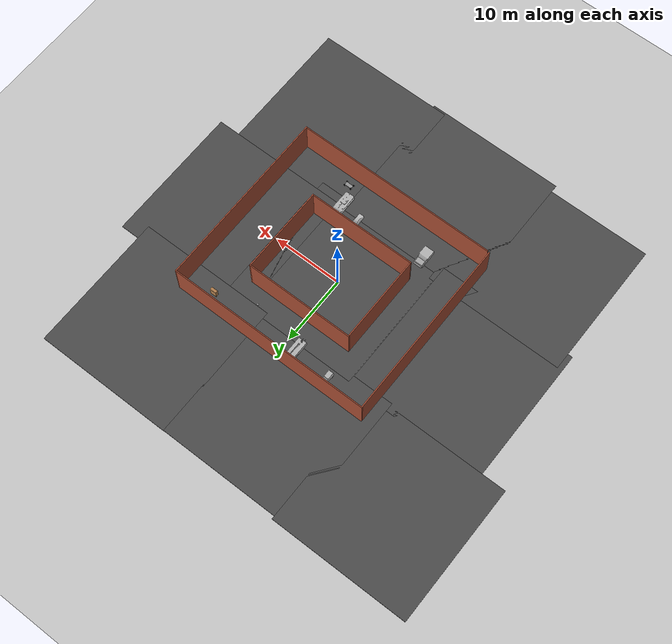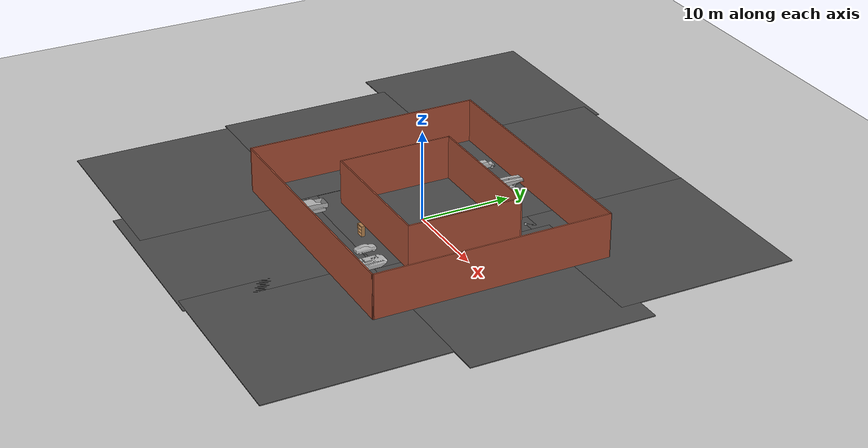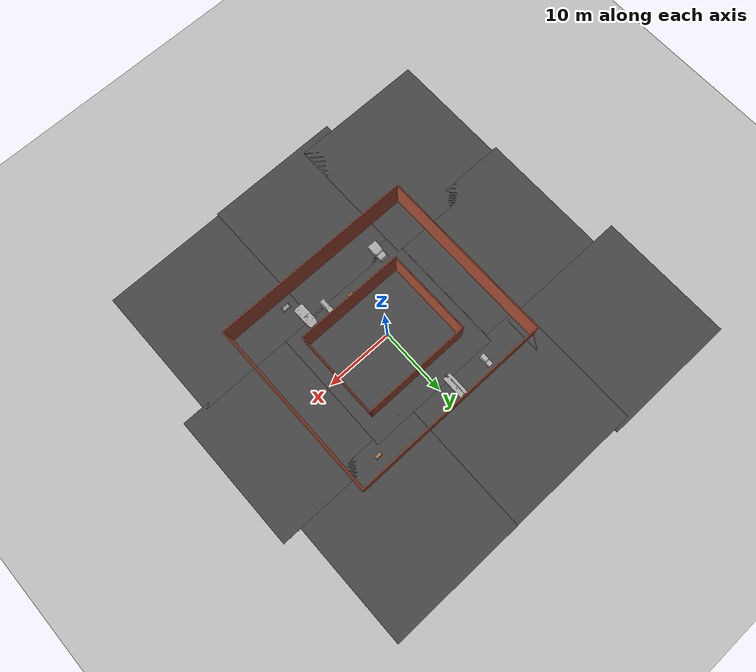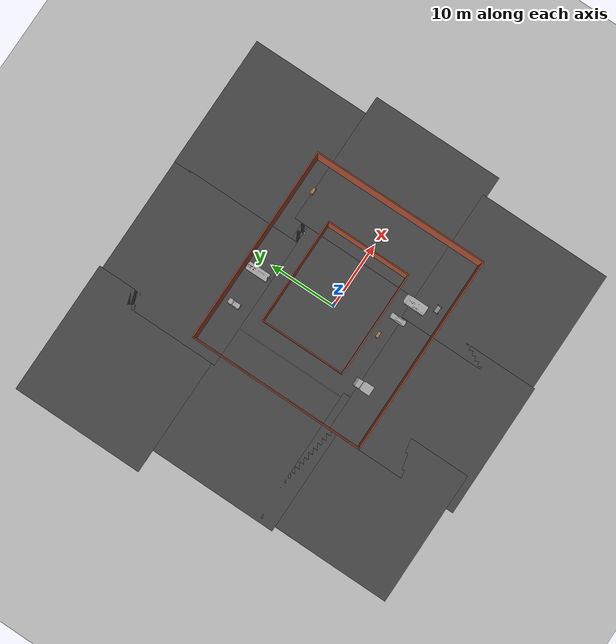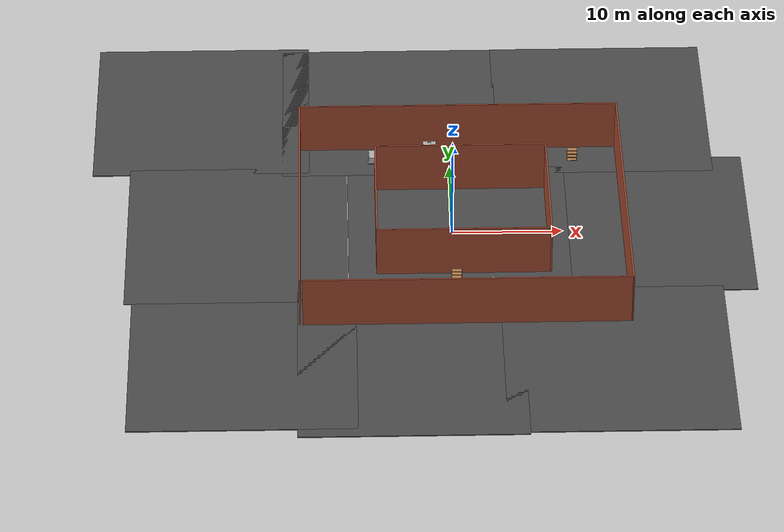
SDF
<sdf version="1.6">
 <world name="default">
  <light name="sun" type="directional">
   <pose>0 0 10 0 -0 0</pose>
   <diffuse>0.8 0.8 0.8 1</diffuse>
   <specular>0.2 0.2 0.2 1</specular>
   <attenuation>
    <range>1000</range>
    <constant>0.9</constant>
    <linear>0.01</linear>
    <quadratic>0.001</quadratic>
   </attenuation>
   <direction>-0.5 0.1 -0.9</direction>
  </light>
  <model name="ground_plane">
   <static>1</static>
   <link name="link">
    <collision name="collision">
     <geometry><plane><normal>0 0 1</normal><size>100 100</size></plane></geometry>
     <surface>
      <contact><collide_bitmask>65535</collide_bitmask></contact>
      <friction><ode><mu>100</mu><mu2>50</mu2></ode></friction>
     </surface>
    </collision>
    <visual name="visual">
     <cast_shadows>0</cast_shadows>
     <geometry><plane><normal>0 0 1</normal><size>100 100</size></plane></geometry>
     <material>
      <script><uri>file://media/materials/scripts/gazebo.material</uri><name>Gazebo/Grey</name></script>
     </material>
    </visual>
   </link>
  </model>
  <gravity>0 0 -9.8</gravity>
  <magnetic_field>6e-06 2.3e-05 -4.2e-05</magnetic_field>
  <atmosphere type="adiabatic"/>
  <physics name="default_physics" default="0" type="ode">
   <max_step_size>0.001</max_step_size>
   <real_time_factor>1</real_time_factor>
   <real_time_update_rate>1000</real_time_update_rate>
  </physics>
  <scene><ambient>0.4 0.4 0.4 1</ambient><background>0.7 0.7 0.7 1</background><shadows>1</shadows></scene>
  <audio><device>default</device></audio>
  <spherical_coordinates>
   <surface_model>EARTH_WGS84</surface_model>
   <latitude_deg>0</latitude_deg>
   <longitude_deg>0</longitude_deg>
   <elevation>0</elevation>
   <heading_deg>0</heading_deg>
  </spherical_coordinates>
  <model name="asphalt_plane">
   <static>1</static>
   <link name="link">
    <collision name="collision"><geometry><box><size>20 20 0.1</size></box></geometry></collision>
    <visual name="visual">
     <cast_shadows>0</cast_shadows>
     <geometry><box><size>20 20 0.1</size></box></geometry>
     <material>
      <script>
       <uri>model://asphalt_plane/materials/scripts</uri>
       <uri>model://asphalt_plane/materials/textures</uri>
       <name>vrc/asphalt</name>
      </script>
     </material>
    </visual>
   </link>
   <pose>0.533004 -0.175508 0 0 -0 0</pose>
  </model>
  <model name="wall_sdf">
   <pose>0.86237 -0.1343 0 0 -0 0</pose>
   <link name="Wall_17">
    <collision name="Wall_17_Collision">
     <geometry><box><size>29.25 0.15 5</size></box></geometry>
     <pose>0 0 2.5 0 -0 0</pose>
    </collision>
    <visual name="Wall_17_Visual">
     <pose>0 0 2.5 0 -0 0</pose>
     <geometry><box><size>29.25 0.15 5</size></box></geometry>
     <material>
      <script><uri>file://media/materials/scripts/gazebo.material</uri><name>Gazebo/Bricks</name></script>
      <ambient>1 1 1 1</ambient>
     </material>
     <meta><layer>0</layer></meta>
    </visual>
    <pose>0.1599 -13.0851 0 0 -0 3.4e-05</pose>
   </link>
   <link name="Wall_18">
    <collision name="Wall_18_Collision">
     <geometry><box><size>26.3201 0.15 5</size></box></geometry>
     <pose>0 0 2.5 0 -0 0</pose>
    </collision>
    <visual name="Wall_18_Visual">
     <pose>0 0 2.5 0 -0 0</pose>
     <geometry><box><size>26.3201 0.15 5</size></box></geometry>
     <material>
      <script><uri>file://media/materials/scripts/gazebo.material</uri><name>Gazebo/Bricks</name></script>
      <ambient>1 1 1 1</ambient>
     </material>
     <meta><layer>0</layer></meta>
    </visual>
    <pose>14.6749 0.000401 0 0 -0 1.57347</pose>
   </link>
   <link name="Wall_19">
    <collision name="Wall_19_Collision">
     <geometry><box><size>29.5 0.15 5</size></box></geometry>
     <pose>0 0 2.5 0 -0 0</pose>
    </collision>
    <visual name="Wall_19_Visual">
     <pose>0 0 2.5 0 -0 0</pose>
     <geometry><box><size>29.5 0.15 5</size></box></geometry>
     <material>
      <script><uri>file://media/materials/scripts/gazebo.material</uri><name>Gazebo/Bricks</name></script>
      <ambient>1 1 1 1</ambient>
     </material>
     <meta><layer>0</layer></meta>
    </visual>
    <pose>-0.0351 13.0854 0 0 -0 3.14159</pose>
   </link>
   <link name="Wall_20">
    <collision name="Wall_20_Collision">
     <geometry><box><size>26.25 0.15 5</size></box></geometry>
     <pose>0 0 2.5 0 -0 0</pose>
    </collision>
    <visual name="Wall_20_Visual">
     <pose>0 0 2.5 0 -0 0</pose>
     <geometry><box><size>26.25 0.15 5</size></box></geometry>
     <material>
      <script><uri>file://media/materials/scripts/gazebo.material</uri><name>Gazebo/Bricks</name></script>
      <ambient>1 1 1 1</ambient>
     </material>
     <meta><layer>0</layer></meta>
    </visual>
    <pose>-14.7101 0.035402 0 0 -0 -1.5708</pose>
   </link>
   <link name="Wall_23">
    <collision name="Wall_23_Collision">
     <geometry><box><size>15.75 0.15 5</size></box></geometry>
     <pose>0 0 2.5 0 -0 0</pose>
    </collision>
    <visual name="Wall_23_Visual">
     <pose>0 0 2.5 0 -0 0</pose>
     <geometry><box><size>15.75 0.15 5</size></box></geometry>
     <material>
      <script><uri>file://media/materials/scripts/gazebo.material</uri><name>Gazebo/Bricks</name></script>
      <ambient>1 1 1 1</ambient>
     </material>
     <meta><layer>0</layer></meta>
    </visual>
    <pose>0.0229 -5.8436 0 0 -0 0</pose>
   </link>
   <link name="Wall_24">
    <collision name="Wall_24_Collision">
     <geometry><box><size>12.786 0.15 5</size></box></geometry>
     <pose>0 0 2.5 0 -0 0</pose>
    </collision>
    <visual name="Wall_24_Visual">
     <pose>0 0 2.5 0 -0 0</pose>
     <geometry><box><size>12.786 0.15 5</size></box></geometry>
     <material>
      <script><uri>file://media/materials/scripts/gazebo.material</uri><name>Gazebo/Bricks</name></script>
      <ambient>1 1 1 1</ambient>
     </material>
     <meta><layer>0</layer></meta>
    </visual>
    <pose>7.8229 0.474401 0 0 -0 1.5708</pose>
   </link>
   <link name="Wall_25">
    <collision name="Wall_25_Collision">
     <geometry><box><size>15.75 0.15 5</size></box></geometry>
     <pose>0 0 2.5 0 -0 0</pose>
    </collision>
    <visual name="Wall_25_Visual">
     <pose>0 0 2.5 0 -0 0</pose>
     <geometry><box><size>15.75 0.15 5</size></box></geometry>
     <material>
      <script><uri>file://media/materials/scripts/gazebo.material</uri><name>Gazebo/Bricks</name></script>
      <ambient>1 1 1 1</ambient>
     </material>
     <meta><layer>0</layer></meta>
    </visual>
    <pose>0.0229 6.7924 0 0 -0 3.14159</pose>
   </link>
   <link name="Wall_26">
    <collision name="Wall_26_Collision">
     <geometry><box><size>12.571 0.15 5</size></box></geometry>
     <pose>0 0 2.5 0 -0 0</pose>
    </collision>
    <visual name="Wall_26_Visual">
     <pose>0 0 2.5 0 -0 0</pose>
     <geometry><box><size>12.571 0.15 5</size></box></geometry>
     <material>
      <script><uri>file://media/materials/scripts/gazebo.material</uri><name>Gazebo/Bricks</name></script>
      <ambient>1 1 1 1</ambient>
     </material>
     <meta><layer>0</layer></meta>
    </visual>
    <pose>-7.7771 0.581902 0 0 -0 -1.5708</pose>
   </link>
   <static>1</static>
  </model>
  <model name="asphalt_plane_0">
   <static>1</static>
   <link name="link">
    <collision name="collision"><geometry><box><size>20 20 0.1</size></box></geometry></collision>
    <visual name="visual">
     <cast_shadows>0</cast_shadows>
     <geometry><box><size>20 20 0.1</size></box></geometry>
     <material>
      <script>
       <uri>model://asphalt_plane/materials/scripts</uri>
       <uri>model://asphalt_plane/materials/textures</uri>
       <name>vrc/asphalt</name>
      </script>
     </material>
    </visual>
   </link>
   <pose>-19.542 0.036842 0 0 -0 0</pose>
  </model>
  <model name="asphalt_plane_1">
   <static>1</static>
   <link name="link">
    <collision name="collision"><geometry><box><size>20 20 0.1</size></box></geometry></collision>
    <visual name="visual">
     <cast_shadows>0</cast_shadows>
     <geometry><box><size>20 20 0.1</size></box></geometry>
     <material>
      <script>
       <uri>model://asphalt_plane/materials/scripts</uri>
       <uri>model://asphalt_plane/materials/textures</uri>
       <name>vrc/asphalt</name>
      </script>
     </material>
    </visual>
   </link>
   <pose>-18.8455 -17.6454 0 0 -0 0</pose>
  </model>
  <model name="asphalt_plane_2">
   <static>1</static>
   <link name="link">
    <collision name="collision"><geometry><box><size>20 20 0.1</size></box></geometry></collision>
    <visual name="visual">
     <cast_shadows>0</cast_shadows>
     <geometry><box><size>20 20 0.1</size></box></geometry>
     <material>
      <script>
       <uri>model://asphalt_plane/materials/scripts</uri>
       <uri>model://asphalt_plane/materials/textures</uri>
       <name>vrc/asphalt</name>
      </script>
     </material>
    </visual>
   </link>
   <pose>-4.06392 -18.6881 0 0 -0 0</pose>
  </model>
  <model name="asphalt_plane_3">
   <static>1</static>
   <link name="link">
    <collision name="collision"><geometry><box><size>20 20 0.1</size></box></geometry></collision>
    <visual name="visual">
     <cast_shadows>0</cast_shadows>
     <geometry><box><size>20 20 0.1</size></box></geometry>
     <material>
      <script>
       <uri>model://asphalt_plane/materials/scripts</uri>
       <uri>model://asphalt_plane/materials/textures</uri>
       <name>vrc/asphalt</name>
      </script>
     </material>
    </visual>
   </link>
   <pose>14.0061 -18.4264 0 0 -0 0</pose>
  </model>
  <model name="asphalt_plane_4">
   <static>1</static>
   <link name="link">
    <collision name="collision"><geometry><box><size>20 20 0.1</size></box></geometry></collision>
    <visual name="visual">
     <cast_shadows>0</cast_shadows>
     <geometry><box><size>20 20 0.1</size></box></geometry>
     <material>
      <script>
       <uri>model://asphalt_plane/materials/scripts</uri>
       <uri>model://asphalt_plane/materials/textures</uri>
       <name>vrc/asphalt</name>
      </script>
     </material>
    </visual>
   </link>
   <pose>17.0836 1.00489 0 0 -0 0</pose>
  </model>
  <model name="asphalt_plane_5">
   <static>1</static>
   <link name="link">
    <collision name="collision"><geometry><box><size>20 20 0.1</size></box></geometry></collision>
    <visual name="visual">
     <cast_shadows>0</cast_shadows>
     <geometry><box><size>20 20 0.1</size></box></geometry>
     <material>
      <script>
       <uri>model://asphalt_plane/materials/scripts</uri>
       <uri>model://asphalt_plane/materials/textures</uri>
       <name>vrc/asphalt</name>
      </script>
     </material>
    </visual>
   </link>
   <pose>14.3755 18.9058 0 0 -0 0</pose>
  </model>
  <model name="asphalt_plane_6">
   <static>1</static>
   <link name="link">
    <collision name="collision"><geometry><box><size>20 20 0.1</size></box></geometry></collision>
    <visual name="visual">
     <cast_shadows>0</cast_shadows>
     <geometry><box><size>20 20 0.1</size></box></geometry>
     <material>
      <script>
       <uri>model://asphalt_plane/materials/scripts</uri>
       <uri>model://asphalt_plane/materials/textures</uri>
       <name>vrc/asphalt</name>
      </script>
     </material>
    </visual>
   </link>
   <pose>-5.47798 18.8643 0 0 -0 0</pose>
  </model>
  <model name="asphalt_plane_7">
   <static>1</static>
   <link name="link">
    <collision name="collision"><geometry><box><size>20 20 0.1</size></box></geometry></collision>
    <visual name="visual">
     <cast_shadows>0</cast_shadows>
     <geometry><box><size>20 20 0.1</size></box></geometry>
     <material>
      <script>
       <uri>model://asphalt_plane/materials/scripts</uri>
       <uri>model://asphalt_plane/materials/textures</uri>
       <name>vrc/asphalt</name>
      </script>
     </material>
    </visual>
   </link>
   <pose>-23.0053 19.3151 0 0 -0 0</pose>
  </model>
  <model name="beer">
   <link name="link">
    <pose>0 0 0.115 0 -0 0</pose>
    <inertial>
     <mass>0.39</mass>
     <inertia><ixx>0.00058</ixx><ixy>0</ixy><ixz>0</ixz><iyy>0.00058</iyy><iyz>0</iyz><izz>0.00019</izz></inertia>
    </inertial>
    <collision name="collision">
     <geometry><cylinder><radius>0.055</radius><length>0.23</length></cylinder></geometry>
    </collision>
    <visual name="visual">
     <geometry><cylinder><radius>0.055</radius><length>0.23</length></cylinder></geometry>
     <material>
      <script>
       <uri>model://beer/materials/scripts</uri>
       <uri>model://beer/materials/textures</uri>
       <name>Beer/Diffuse</name>
      </script>
     </material>
    </visual>
   </link>
   <pose>8.91739 12.208 0.049992 6e-06 3.4e-05 -8.6e-05</pose>
  </model>
  <model name="bookshelf">
   <static>1</static>
   <link name="link">
    <inertial><mass>1</mass></inertial>
    <collision name="back">
     <pose>0 0.005 0.6 0 -0 0</pose>
     <geometry><box><size>0.9 0.01 1.2</size></box></geometry>
    </collision>
    <visual name="visual1">
     <pose>0 0.005 0.6 0 -0 0</pose>
     <geometry><box><size>0.9 0.01 1.2</size></box></geometry>
     <material>
      <script><uri>file://media/materials/scripts/gazebo.material</uri><name>Gazebo/Wood</name></script>
     </material>
    </visual>
    <collision name="left_side">
     <pose>0.45 -0.195 0.6 0 -0 0</pose>
     <geometry><box><size>0.02 0.4 1.2</size></box></geometry>
    </collision>
    <visual name="visual2">
     <pose>0.45 -0.195 0.6 0 -0 0</pose>
     <geometry><box><size>0.02 0.4 1.2</size></box></geometry>
     <material>
      <script><uri>file://media/materials/scripts/gazebo.material</uri><name>Gazebo/Wood</name></script>
     </material>
    </visual>
    <collision name="right_side">
     <pose>-0.45 -0.195 0.6 0 -0 0</pose>
     <geometry><box><size>0.02 0.4 1.2</size></box></geometry>
    </collision>
    <visual name="visual3">
     <pose>-0.45 -0.195 0.6 0 -0 0</pose>
     <geometry><box><size>0.02 0.4 1.2</size></box></geometry>
     <material>
      <script><uri>file://media/materials/scripts/gazebo.material</uri><name>Gazebo/Wood</name></script>
     </material>
    </visual>
    <collision name="bottom">
     <pose>0 -0.195 0.03 0 -0 0</pose>
     <geometry><box><size>0.88 0.4 0.06</size></box></geometry>
    </collision>
    <visual name="visual4">
     <pose>0 -0.195 0.03 0 -0 0</pose>
     <geometry><box><size>0.88 0.4 0.06</size></box></geometry>
     <material>
      <script><uri>file://media/materials/scripts/gazebo.material</uri><name>Gazebo/Wood</name></script>
     </material>
    </visual>
    <collision name="top">
     <pose>0 -0.195 1.19 0 -0 0</pose>
     <geometry><box><size>0.88 0.4 0.02</size></box></geometry>
    </collision>
    <visual name="visual5">
     <pose>0 -0.195 1.19 0 -0 0</pose>
     <geometry><box><size>0.88 0.4 0.02</size></box></geometry>
     <material>
      <script><uri>file://media/materials/scripts/gazebo.material</uri><name>Gazebo/Wood</name></script>
     </material>
    </visual>
    <collision name="low_shelf">
     <pose>0 -0.195 0.43 0 -0 0</pose>
     <geometry><box><size>0.88 0.4 0.02</size></box></geometry>
    </collision>
    <visual name="visual6">
     <pose>0 -0.195 0.43 0 -0 0</pose>
     <geometry><box><size>0.88 0.4 0.02</size></box></geometry>
     <material>
      <script><uri>file://media/materials/scripts/gazebo.material</uri><name>Gazebo/Wood</name></script>
     </material>
    </visual>
    <collision name="high_shelf">
     <pose>0 -0.195 0.8 0 -0 0</pose>
     <geometry><box><size>0.88 0.4 0.02</size></box></geometry>
    </collision>
    <visual name="visual7">
     <pose>0 -0.195 0.8 0 -0 0</pose>
     <geometry><box><size>0.88 0.4 0.02</size></box></geometry>
     <material>
      <script><uri>file://media/materials/scripts/gazebo.material</uri><name>Gazebo/Wood</name></script>
     </material>
    </visual>
   </link>
   <pose>11.4087 11.1567 0 0 -0 0</pose>
  </model>
  <model name="bookshelf_0">
   <static>1</static>
   <link name="link">
    <inertial><mass>1</mass></inertial>
    <collision name="back">
     <pose>0 0.005 0.6 0 -0 0</pose>
     <geometry><box><size>0.9 0.01 1.2</size></box></geometry>
    </collision>
    <visual name="visual1">
     <pose>0 0.005 0.6 0 -0 0</pose>
     <geometry><box><size>0.9 0.01 1.2</size></box></geometry>
     <material>
      <script><uri>file://media/materials/scripts/gazebo.material</uri><name>Gazebo/Wood</name></script>
     </material>
    </visual>
    <collision name="left_side">
     <pose>0.45 -0.195 0.6 0 -0 0</pose>
     <geometry><box><size>0.02 0.4 1.2</size></box></geometry>
    </collision>
    <visual name="visual2">
     <pose>0.45 -0.195 0.6 0 -0 0</pose>
     <geometry><box><size>0.02 0.4 1.2</size></box></geometry>
     <material>
      <script><uri>file://media/materials/scripts/gazebo.material</uri><name>Gazebo/Wood</name></script>
     </material>
    </visual>
    <collision name="right_side">
     <pose>-0.45 -0.195 0.6 0 -0 0</pose>
     <geometry><box><size>0.02 0.4 1.2</size></box></geometry>
    </collision>
    <visual name="visual3">
     <pose>-0.45 -0.195 0.6 0 -0 0</pose>
     <geometry><box><size>0.02 0.4 1.2</size></box></geometry>
     <material>
      <script><uri>file://media/materials/scripts/gazebo.material</uri><name>Gazebo/Wood</name></script>
     </material>
    </visual>
    <collision name="bottom">
     <pose>0 -0.195 0.03 0 -0 0</pose>
     <geometry><box><size>0.88 0.4 0.06</size></box></geometry>
    </collision>
    <visual name="visual4">
     <pose>0 -0.195 0.03 0 -0 0</pose>
     <geometry><box><size>0.88 0.4 0.06</size></box></geometry>
     <material>
      <script><uri>file://media/materials/scripts/gazebo.material</uri><name>Gazebo/Wood</name></script>
     </material>
    </visual>
    <collision name="top">
     <pose>0 -0.195 1.19 0 -0 0</pose>
     <geometry><box><size>0.88 0.4 0.02</size></box></geometry>
    </collision>
    <visual name="visual5">
     <pose>0 -0.195 1.19 0 -0 0</pose>
     <geometry><box><size>0.88 0.4 0.02</size></box></geometry>
     <material>
      <script><uri>file://media/materials/scripts/gazebo.material</uri><name>Gazebo/Wood</name></script>
     </material>
    </visual>
    <collision name="low_shelf">
     <pose>0 -0.195 0.43 0 -0 0</pose>
     <geometry><box><size>0.88 0.4 0.02</size></box></geometry>
    </collision>
    <visual name="visual6">
     <pose>0 -0.195 0.43 0 -0 0</pose>
     <geometry><box><size>0.88 0.4 0.02</size></box></geometry>
     <material>
      <script><uri>file://media/materials/scripts/gazebo.material</uri><name>Gazebo/Wood</name></script>
     </material>
    </visual>
    <collision name="high_shelf">
     <pose>0 -0.195 0.8 0 -0 0</pose>
     <geometry><box><size>0.88 0.4 0.02</size></box></geometry>
    </collision>
    <visual name="visual7">
     <pose>0 -0.195 0.8 0 -0 0</pose>
     <geometry><box><size>0.88 0.4 0.02</size></box></geometry>
     <material>
      <script><uri>file://media/materials/scripts/gazebo.material</uri><name>Gazebo/Wood</name></script>
     </material>
    </visual>
   </link>
   <pose>0.189733 -6.9188 0 0 -0 0</pose>
  </model>
  <model name="cart_front_steer">
   <link name="chassis">
    <pose>0 0 0.15 0 -0 0</pose>
    <inertial>
     <pose>0.1 0 0 0 -0 0</pose>
     <mass>10</mass>
     <inertia>
      <ixx>0.216667</ixx>
      <iyy>0.841667</iyy>
      <izz>1.04167</izz>
      <ixy>0</ixy>
      <ixz>0</ixz>
      <iyz>0</iyz>
     </inertia>
    </inertial>
    <collision name="collision"><geometry><box><size>1 0.5 0.1</size></box></geometry></collision>
    <visual name="visual">
     <geometry><box><size>1 0.5 0.1</size></box></geometry>
     <material>
      <script><uri>file://media/materials/scripts/gazebo.material</uri><name>Gazebo/Grey</name></script>
     </material>
    </visual>
   </link>
   <link name="wheel_front_left">
    <pose>0.5 0.298 0.15 -1.5708 -0.087266 0</pose>
    <inertial>
     <mass>0.5</mass>
     <inertia>
      <ixx>0.00307917</ixx>
      <iyy>0.00307917</iyy>
      <izz>0.005625</izz>
      <ixy>0</ixy>
      <ixz>0</ixz>
      <iyz>0</iyz>
     </inertia>
    </inertial>
    <collision name="collision">
     <geometry><cylinder><radius>0.15</radius><length>0.08</length></cylinder></geometry>
    </collision>
    <visual name="visual">
     <geometry><cylinder><radius>0.15</radius><length>0.08</length></cylinder></geometry>
     <material>
      <script><uri>file://media/materials/scripts/gazebo.material</uri><name>Gazebo/Black</name></script>
     </material>
    </visual>
   </link>
   <joint name="wheel_front_left_steer_spin" type="universal">
    <parent>chassis</parent>
    <child>wheel_front_left</child>
    <axis>
     <xyz>0 -1 0</xyz>
     <limit><lower>-0.610865</lower><upper>0.610865</upper></limit>
     <use_parent_model_frame>0</use_parent_model_frame>
     <dynamics><spring_reference>0</spring_reference><spring_stiffness>0</spring_stiffness></dynamics>
    </axis>
    <axis2>
     <xyz>0 0 1</xyz>
     <use_parent_model_frame>0</use_parent_model_frame>
     <dynamics><spring_reference>0</spring_reference><spring_stiffness>0</spring_stiffness></dynamics>
    </axis2>
   </joint>
   <link name="wheel_front_right">
    <pose>0.5 -0.298 0.15 -1.5708 -0.087266 0</pose>
    <inertial>
     <mass>0.5</mass>
     <inertia>
      <ixx>0.00307917</ixx>
      <iyy>0.00307917</iyy>
      <izz>0.005625</izz>
      <ixy>0</ixy>
      <ixz>0</ixz>
      <iyz>0</iyz>
     </inertia>
    </inertial>
    <collision name="collision">
     <geometry><cylinder><radius>0.15</radius><length>0.08</length></cylinder></geometry>
    </collision>
    <visual name="visual">
     <geometry><cylinder><radius>0.15</radius><length>0.08</length></cylinder></geometry>
     <material>
      <script><uri>file://media/materials/scripts/gazebo.material</uri><name>Gazebo/Black</name></script>
     </material>
    </visual>
   </link>
   <joint name="wheel_front_right_steer_spin" type="universal">
    <parent>chassis</parent>
    <child>wheel_front_right</child>
    <axis>
     <xyz>0 -1 0</xyz>
     <limit><lower>-0.610865</lower><upper>0.610865</upper></limit>
     <use_parent_model_frame>0</use_parent_model_frame>
     <dynamics><spring_reference>0</spring_reference><spring_stiffness>0</spring_stiffness></dynamics>
    </axis>
    <axis2>
     <xyz>0 0 1</xyz>
     <use_parent_model_frame>0</use_parent_model_frame>
     <dynamics><spring_reference>0</spring_reference><spring_stiffness>0</spring_stiffness></dynamics>
    </axis2>
   </joint>
   <link name="wheel_rear_left">
    <pose>-0.5 0.298 0.15 -1.5708 0 0</pose>
    <inertial>
     <mass>0.5</mass>
     <inertia>
      <ixx>0.00307917</ixx>
      <iyy>0.00307917</iyy>
      <izz>0.005625</izz>
      <ixy>0</ixy>
      <ixz>0</ixz>
      <iyz>0</iyz>
     </inertia>
    </inertial>
    <collision name="collision">
     <geometry><cylinder><radius>0.15</radius><length>0.08</length></cylinder></geometry>
    </collision>
    <visual name="visual">
     <geometry><cylinder><radius>0.15</radius><length>0.08</length></cylinder></geometry>
     <material>
      <script><uri>file://media/materials/scripts/gazebo.material</uri><name>Gazebo/Black</name></script>
     </material>
    </visual>
   </link>
   <joint name="wheel_rear_left_spin" type="revolute">
    <parent>chassis</parent>
    <child>wheel_rear_left</child>
    <axis>
     <xyz>0 0 1</xyz>
     <use_parent_model_frame>0</use_parent_model_frame>
     <limit><lower>-1e+16</lower><upper>1e+16</upper></limit>
     <dynamics><spring_reference>0</spring_reference><spring_stiffness>0</spring_stiffness></dynamics>
    </axis>
   </joint>
   <link name="wheel_rear_right">
    <pose>-0.5 -0.298 0.15 -1.5708 0 0</pose>
    <inertial>
     <mass>0.5</mass>
     <inertia>
      <ixx>0.00307917</ixx>
      <iyy>0.00307917</iyy>
      <izz>0.005625</izz>
      <ixy>0</ixy>
      <ixz>0</ixz>
      <iyz>0</iyz>
     </inertia>
    </inertial>
    <collision name="collision">
     <geometry><cylinder><radius>0.15</radius><length>0.08</length></cylinder></geometry>
    </collision>
    <visual name="visual">
     <geometry><cylinder><radius>0.15</radius><length>0.08</length></cylinder></geometry>
     <material>
      <script><uri>file://media/materials/scripts/gazebo.material</uri><name>Gazebo/Black</name></script>
     </material>
    </visual>
   </link>
   <joint name="wheel_rear_right_spin" type="revolute">
    <parent>chassis</parent>
    <child>wheel_rear_right</child>
    <axis>
     <xyz>0 0 1</xyz>
     <use_parent_model_frame>0</use_parent_model_frame>
     <limit><lower>-1e+16</lower><upper>1e+16</upper></limit>
     <dynamics><spring_reference>0</spring_reference><spring_stiffness>0</spring_stiffness></dynamics>
    </axis>
   </joint>
   <pose>7.51389 -11.8992 0.050002 -1e-06 -1e-06 0.005894</pose>
  </model>
  <model name="frc2016_ball">
   <pose>6.07036 8.77175 0.176984 0 -0 0</pose>
   <link name="link">
    <inertial>
     <mass>0.213</mass>
     <inertia>
      <ixx>0.00322667</ixx>
      <ixy>0</ixy>
      <ixz>0</ixz>
      <iyy>0.00322667</iyy>
      <iyz>0</iyz>
      <izz>0.00322667</izz>
     </inertia>
    </inertial>
    <visual name="visual"><geometry><sphere><radius>0.127</radius></sphere></geometry></visual>
    <collision name="collision">
     <geometry><sphere><radius>0.127</radius></sphere></geometry>
     <surface>
      <bounce><restitution_coefficient>0.15937</restitution_coefficient><threshold>0</threshold></bounce>
      <contact><ode><max_vel>100</max_vel><min_depth>0.001</min_depth></ode></contact>
     </surface>
    </collision>
   </link>
  </model>
  <model name="k131">
   <static>1</static>
   <link name="link">
    <inertial>
     <mass>100</mass>
     <inertia><ixx>1</ixx><ixy>0</ixy><ixz>0</ixz><iyy>1</iyy><iyz>0</iyz><izz>1</izz></inertia>
    </inertial>
    <collision name="collision">
     <geometry><mesh><scale>0.5 0.5 0.5</scale><uri>model://k131/meshes/k131.obj</uri></mesh></geometry>
     <surface><contact><ode><max_vel>0.1</max_vel><min_depth>0.001</min_depth></ode></contact></surface>
    </collision>
    <visual name="visual">
     <pose>0 0 0 1.5708 -0 0</pose>
     <geometry><mesh><scale>0.5 0.5 0.5</scale><uri>model://k131/meshes/k131.obj</uri></mesh></geometry>
    </visual>
   </link>
   <pose>-7.10669 11.2718 0 0 -0 0</pose>
  </model>
  <model name="k1avlb">
   <static>1</static>
   <link name="link">
    <inertial>
     <mass>100</mass>
     <inertia><ixx>1</ixx><ixy>0</ixy><ixz>0</ixz><iyy>1</iyy><iyz>0</iyz><izz>1</izz></inertia>
    </inertial>
    <collision name="collision">
     <geometry><mesh><scale>0.3 0.3 0.3</scale><uri>model://k1avlb/meshes/k1avlb.obj</uri></mesh></geometry>
     <surface><contact><ode><max_vel>0.1</max_vel><min_depth>0.001</min_depth></ode></contact></surface>
    </collision>
    <visual name="visual">
     <pose>0 0 0 1.5708 -0 0</pose>
     <geometry><mesh><scale>0.3 0.3 0.3</scale><uri>model://k1avlb/meshes/k1avlb.obj</uri></mesh></geometry>
    </visual>
   </link>
   <pose>-1.78213 10.7036 0 0 -0 0</pose>
  </model>
  <model name="bmp1">
   <static>1</static>
   <link name="link">
    <inertial>
     <mass>100</mass>
     <inertia><ixx>1</ixx><ixy>0</ixy><ixz>0</ixz><iyy>1</iyy><iyz>0</iyz><izz>1</izz></inertia>
    </inertial>
    <collision name="collision">
     <geometry><mesh><scale>0.5 0.5 0.5</scale><uri>model://bmp1/meshes/bmp1.obj</uri></mesh></geometry>
     <surface><contact><ode><max_vel>0.1</max_vel><min_depth>0.001</min_depth></ode></contact></surface>
    </collision>
    <visual name="visual">
     <pose>0 0 0 1.5708 -0 0</pose>
     <geometry><mesh><scale>0.5 0.5 0.5</scale><uri>model://bmp1/meshes/bmp1.obj</uri></mesh></geometry>
    </visual>
   </link>
   <pose>6.37074 -9.04807 0 0 -0 0</pose>
  </model>
  <model name="car">
   <static>1</static>
   <link name="link">
    <inertial>
     <mass>100</mass>
     <inertia><ixx>1</ixx><ixy>0</ixy><ixz>0</ixz><iyy>1</iyy><iyz>0</iyz><izz>1</izz></inertia>
    </inertial>
    <collision name="collision">
     <geometry><mesh><scale>0.5 0.5 0.5</scale><uri>model://car/meshes/car.obj</uri></mesh></geometry>
     <surface><contact><ode><max_vel>0.1</max_vel><min_depth>0.001</min_depth></ode></contact></surface>
    </collision>
    <visual name="visual">
     <pose>0 0 0 1.5708 -0 0</pose>
     <geometry><mesh><scale>0.5 0.5 0.5</scale><uri>model://car/meshes/car.obj</uri></mesh></geometry>
    </visual>
   </link>
   <pose>3.42316 -8.23662 0 0 -0 0</pose>
  </model>
  <model name="m9ace">
   <static>1</static>
   <link name="link">
    <inertial>
     <mass>100</mass>
     <inertia><ixx>1</ixx><ixy>0</ixy><ixz>0</ixz><iyy>1</iyy><iyz>0</iyz><izz>1</izz></inertia>
    </inertial>
    <collision name="collision">
     <geometry><mesh><scale>0.5 0.5 0.5</scale><uri>model://m9ace/meshes/m9ace.obj</uri></mesh></geometry>
     <surface><contact><ode><max_vel>0.1</max_vel><min_depth>0.001</min_depth></ode></contact></surface>
    </collision>
    <visual name="visual">
     <pose>0 0 0 1.5708 -0 0</pose>
     <geometry><mesh><scale>0.5 0.5 0.5</scale><uri>model://m9ace/meshes/m9ace.obj</uri></mesh></geometry>
    </visual>
   </link>
   <pose>-6.71033 -9.0932 0 0 -0 0</pose>
  </model>
 </world>
</sdf>
